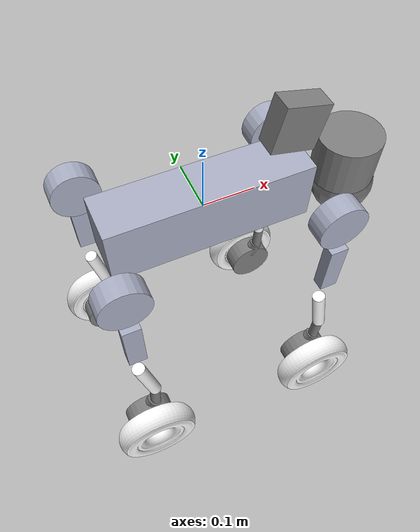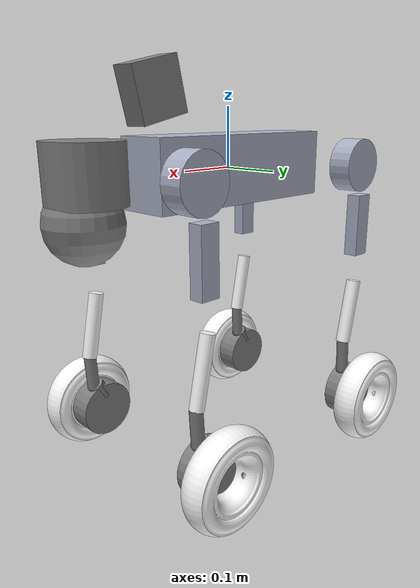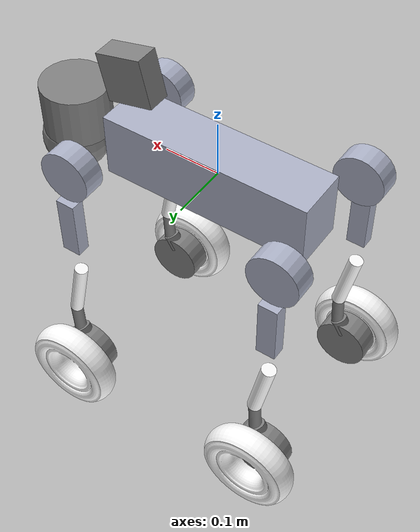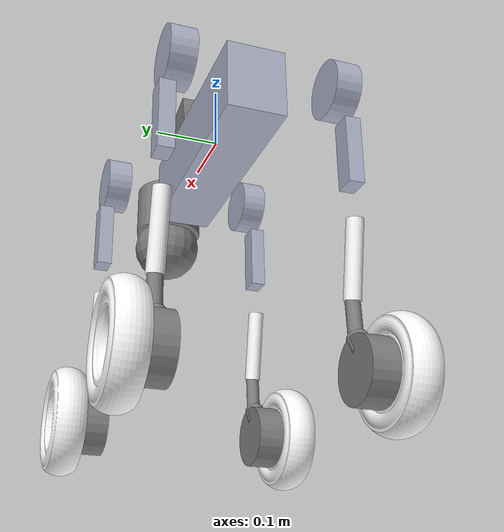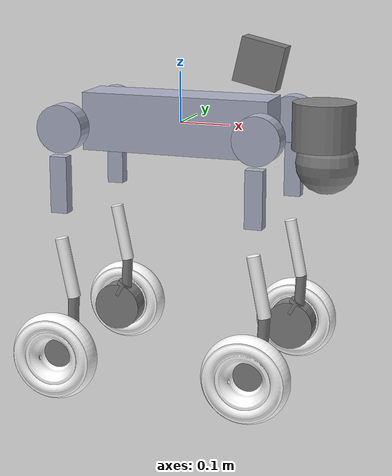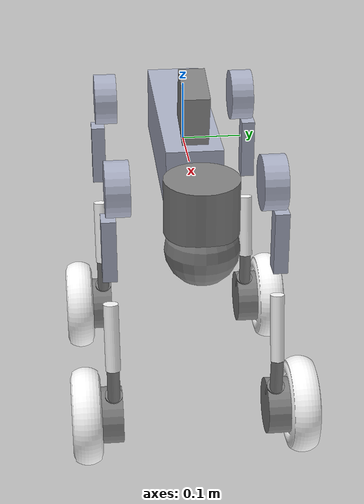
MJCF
<mujoco model="go2w_description">
  <compiler angle="radian"/>

  <asset>
    <mesh name="left_wheel" content_type="model/stl" file="left_wheel.stl"/>
    <mesh name="right_wheel" content_type="model/stl" file="right_wheel.stl"/>
  </asset>

  <worldbody>
    <geom size="0.1881 0.04675 0.057" type="box" rgba="0.671705 0.692426 0.77427 1"/>
    <geom size="0.06 0.045" pos="0.285 0 0.01" type="cylinder"/>
    <geom size="0.06" pos="0.293 0 -0.06"/>
    <geom size="0.043 0.043 0.021" pos="0.16143 0 0.12262" quat="-0.0800485 0.0800501 0.702563 0.70256" type="box"/>
    <body name="FL_hip" pos="0.1934 0.0465 0">
      <inertial pos="-0.0054 0.00194 -0.000105" quat="0.497014 0.499245 0.505462 0.498237" mass="0.678" diaginertia="0.00088403 0.000596003 0.000479967"/>
      <joint name="FL_hip_joint" pos="0 0 0" axis="1 0 0" range="-1.0472 1.0472" actuatorfrcrange="-23.7 23.7"/>
      <geom size="0.046 0.02" pos="0 0.08 0" quat="0.707107 0.707107 0 0" type="cylinder" rgba="0.671705 0.692426 0.77427 1"/>
      <body name="FL_thigh" pos="0 0.0955 0">
        <inertial pos="-0.00374 -0.0223 -0.0327" quat="0.829533 0.0847635 -0.0200632 0.551623" mass="1.152" diaginertia="0.00594973 0.00584149 0.000878787"/>
        <joint name="FL_thigh_joint" pos="0 0 0" axis="0 1 0" range="-1.5708 3.4907" actuatorfrcrange="-23.7 23.7"/>
        <geom size="0.055 0.01225 0.017" pos="0 0 -0.1065" quat="0.707107 0 0.707107 0" type="box" rgba="0.671705 0.692426 0.77427 1"/>
        <body name="FL_calf" pos="0 0 -0.213">
          <inertial pos="-0.00583047 -0.000177199 -0.202827" quat="0.706542 0.0341434 0.029565 0.706229" mass="0.847352" diaginertia="0.00439089 0.00374067 0.0010673"/>
          <joint name="FL_calf_joint" pos="0 0 0" axis="0 1 0" range="-2.7227 -0.83776" actuatorfrcrange="-35.55 35.55"/>
          <geom size="0.012 0.06" pos="0.008 0 -0.06" quat="0.994493 0 -0.104807 0" type="cylinder" rgba="1 1 1 1"/>
          <geom size="0.011 0.0325" pos="0.02 0 -0.148" quat="0.999688 0 0.0249974 0" type="cylinder"/>
          <geom size="0.0155 0.015" pos="0.00801333 0 -0.18745" quat="0.965093 0 0.261909 0" type="cylinder"/>
          <geom size="0.05 0.025" pos="0 0.01 -0.2264" quat="0.707107 0.707107 0 0" type="cylinder"/>
          <body name="FL_foot" pos="0 0 -0.2264">
            <inertial pos="0 0.06 0" quat="0.707107 0 0 0.707107" mass="0.52" diaginertia="0.0012 0.0007 0.0007"/>
            <joint name="FL_foot_joint" pos="0 0 0" axis="0 1 0" actuatorfrcrange="-23.7 23.7"/>
            <geom type="mesh" rgba="1 1 1 1" mesh="left_wheel"/>
          </body>
        </body>
      </body>
    </body>
    <body name="FR_hip" pos="0.1934 -0.0465 0">
      <inertial pos="-0.0054 -0.00194 -0.000105" quat="0.498237 0.505462 0.499245 0.497014" mass="0.678" diaginertia="0.00088403 0.000596003 0.000479967"/>
      <joint name="FR_hip_joint" pos="0 0 0" axis="1 0 0" range="-1.0472 1.0472" actuatorfrcrange="-23.7 23.7"/>
      <geom size="0.046 0.02" pos="0 -0.08 0" quat="0.707107 0.707107 0 0" type="cylinder" rgba="0.671705 0.692426 0.77427 1"/>
      <body name="FR_thigh" pos="0 -0.0955 0">
        <inertial pos="-0.00374 0.0223 -0.0327" quat="0.551623 -0.0200632 0.0847635 0.829533" mass="1.152" diaginertia="0.00594973 0.00584149 0.000878787"/>
        <joint name="FR_thigh_joint" pos="0 0 0" axis="0 1 0" range="-1.5708 3.4907" actuatorfrcrange="-23.7 23.7"/>
        <geom size="0.055 0.01225 0.017" pos="0 0 -0.1065" quat="0.707107 0 0.707107 0" type="box" rgba="0.671705 0.692426 0.77427 1"/>
        <body name="FR_calf" pos="0 0 -0.213">
          <inertial pos="0.00941703 0.000177199 -0.202827" quat="0.706926 -0.0108701 -0.00627168 0.707176" mass="0.847352" diaginertia="0.00434456 0.00372059 0.00104105"/>
          <joint name="FR_calf_joint" pos="0 0 0" axis="0 1 0" range="-2.7227 -0.83776" actuatorfrcrange="-35.55 35.55"/>
          <geom size="0.013 0.06" pos="0.01 0 -0.06" quat="0.995004 0 -0.0998334 0" type="cylinder" rgba="1 1 1 1"/>
          <geom size="0.011 0.0325" pos="0.02 0 -0.148" quat="0.999688 0 0.0249974 0" type="cylinder"/>
          <geom size="0.0155 0.015" pos="0.00801333 0 -0.18745" quat="0.965093 0 0.261909 0" type="cylinder"/>
          <geom size="0.05 0.025" pos="0 -0.01 -0.2264" quat="0.707107 0.707107 0 0" type="cylinder"/>
          <body name="FR_foot" pos="0 0 -0.2264">
            <inertial pos="0 -0.06 0" quat="0.707107 0 0 0.707107" mass="0.52" diaginertia="0.0012 0.0007 0.0007"/>
            <joint name="FR_foot_joint" pos="0 0 0" axis="0 1 0" actuatorfrcrange="-23.7 23.7"/>
            <geom type="mesh" rgba="1 1 1 1" mesh="right_wheel"/>
          </body>
        </body>
      </body>
    </body>
    <body name="RL_hip" pos="-0.1934 0.0465 0">
      <inertial pos="0.0054 0.00194 -0.000105" quat="0.505462 0.498237 0.497014 0.499245" mass="0.678" diaginertia="0.00088403 0.000596003 0.000479967"/>
      <joint name="RL_hip_joint" pos="0 0 0" axis="1 0 0" range="-1.0472 1.0472" actuatorfrcrange="-23.7 23.7"/>
      <geom size="0.046 0.02" pos="0 0.08 0" quat="0.707107 0.707107 0 0" type="cylinder" rgba="0.671705 0.692426 0.77427 1"/>
      <body name="RL_thigh" pos="0 0.0955 0">
        <inertial pos="-0.00374 -0.0223 -0.0327" quat="0.829533 0.0847635 -0.0200632 0.551623" mass="1.152" diaginertia="0.00594973 0.00584149 0.000878787"/>
        <joint name="RL_thigh_joint" pos="0 0 0" axis="0 1 0" range="-0.5236 4.5379" actuatorfrcrange="-23.7 23.7"/>
        <geom size="0.055 0.01225 0.017" pos="0 0 -0.1065" quat="0.707107 0 0.707107 0" type="box" rgba="0.671705 0.692426 0.77427 1"/>
        <body name="RL_calf" pos="0 0 -0.213">
          <inertial pos="-0.00583047 -0.000177199 -0.202827" quat="0.706542 0.0341434 0.029565 0.706229" mass="0.847352" diaginertia="0.00439089 0.00374067 0.0010673"/>
          <joint name="RL_calf_joint" pos="0 0 0" axis="0 1 0" range="-2.7227 -0.83776" actuatorfrcrange="-35.55 35.55"/>
          <geom size="0.013 0.06" pos="0.01 0 -0.06" quat="0.995004 0 -0.0998334 0" type="cylinder" rgba="1 1 1 1"/>
          <geom size="0.011 0.0325" pos="0.02 0 -0.148" quat="0.999688 0 0.0249974 0" type="cylinder"/>
          <geom size="0.0155 0.015" pos="0.00801333 0 -0.18745" quat="0.965093 0 0.261909 0" type="cylinder"/>
          <geom size="0.05 0.025" pos="0 0.01 -0.2264" quat="0.707107 0.707107 0 0" type="cylinder"/>
          <body name="RL_foot" pos="0 0 -0.2264">
            <inertial pos="0 0.06 0" quat="0.707107 0 0 0.707107" mass="0.52" diaginertia="0.0012 0.0007 0.0007"/>
            <joint name="RL_foot_joint" pos="0 0 0" axis="0 1 0" actuatorfrcrange="-23.7 23.7"/>
            <geom type="mesh" rgba="1 1 1 1" mesh="left_wheel"/>
          </body>
        </body>
      </body>
    </body>
    <body name="RR_hip" pos="-0.1934 -0.0465 0">
      <inertial pos="0.0054 -0.00194 -0.000105" quat="0.499245 0.497014 0.498237 0.505462" mass="0.678" diaginertia="0.00088403 0.000596003 0.000479967"/>
      <joint name="RR_hip_joint" pos="0 0 0" axis="1 0 0" range="-1.0472 1.0472" actuatorfrcrange="-23.7 23.7"/>
      <geom size="0.046 0.02" pos="0 -0.08 0" quat="0.707107 0.707107 0 0" type="cylinder" rgba="0.671705 0.692426 0.77427 1"/>
      <body name="RR_thigh" pos="0 -0.0955 0">
        <inertial pos="-0.00374 0.0223 -0.0327" quat="0.551623 -0.0200632 0.0847635 0.829533" mass="1.152" diaginertia="0.00594973 0.00584149 0.000878787"/>
        <joint name="RR_thigh_joint" pos="0 0 0" axis="0 1 0" range="-0.5236 4.5379" actuatorfrcrange="-23.7 23.7"/>
        <geom size="0.055 0.01225 0.017" pos="0 0 -0.1065" quat="0.707107 0 0.707107 0" type="box" rgba="0.671705 0.692426 0.77427 1"/>
        <body name="RR_calf" pos="0 0 -0.213">
          <inertial pos="0.00941703 0.000177199 -0.202827" quat="0.706926 -0.0108701 -0.00627168 0.707176" mass="0.847352" diaginertia="0.00434456 0.00372059 0.00104105"/>
          <joint name="RR_calf_joint" pos="0 0 0" axis="0 1 0" range="-2.7227 -0.83776" actuatorfrcrange="-35.55 35.55"/>
          <geom size="0.013 0.06" pos="0.01 0 -0.06" quat="0.995004 0 -0.0998334 0" type="cylinder" rgba="1 1 1 1"/>
          <geom size="0.011 0.0325" pos="0.02 0 -0.148" quat="0.999688 0 0.0249974 0" type="cylinder"/>
          <geom size="0.0155 0.015" pos="0.00801333 0 -0.18745" quat="0.965093 0 0.261909 0" type="cylinder"/>
          <geom size="0.05 0.025" pos="0 -0.01 -0.2264" quat="0.707107 0.707107 0 0" type="cylinder"/>
          <body name="RR_foot" pos="0 0 -0.2264">
            <inertial pos="0 -0.06 0" quat="0.707107 0 0 0.707107" mass="0.52" diaginertia="0.0012 0.0007 0.0007"/>
            <joint name="RR_foot_joint" pos="0 0 0" axis="0 1 0" actuatorfrcrange="-23.7 23.7"/>
            <geom type="mesh" rgba="1 1 1 1" mesh="right_wheel"/>
          </body>
        </body>
      </body>
    </body>
  </worldbody>
</mujoco>
